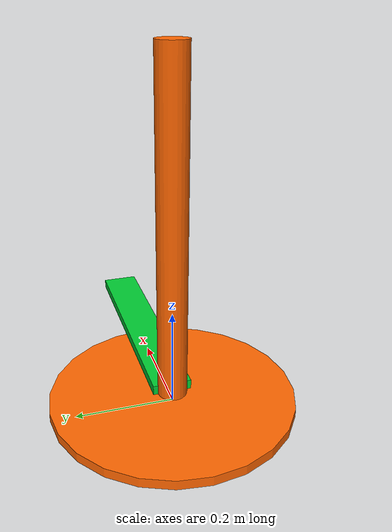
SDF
<?xml version="1.0" ?>
<sdf version="1.9">
  <model name="waypoint_marker">
    <static>true</static>
    <link name="link">
      <visual name="disc">
        <pose>0 0 0.01 0 0 0</pose>
        <geometry>
          <cylinder>
            <radius>0.25</radius>
            <length>0.02</length>
          </cylinder>
        </geometry>
        <material>
          <ambient>1.0 0.4 0.0 1</ambient>
          <diffuse>1.0 0.4 0.0 1</diffuse>
        </material>
      </visual>
      <visual name="heading_arrow">
        <pose>0.25 0 0.03 0 0 0</pose>
        <geometry>
          <box>
            <size>0.5 0.08 0.02</size>
          </box>
        </geometry>
        <material>
          <ambient>0.0 0.8 0.2 1</ambient>
          <diffuse>0.0 0.8 0.2 1</diffuse>
        </material>
      </visual>
      <visual name="pillar">
        <pose>0 0 0.35 0 0 0</pose>
        <geometry>
          <cylinder>
            <radius>0.03</radius>
            <length>0.7</length>
          </cylinder>
        </geometry>
        <material>
          <ambient>1.0 0.4 0.0 1</ambient>
          <diffuse>1.0 0.4 0.0 1</diffuse>
        </material>
      </visual>
    </link>
  </model>
</sdf>
